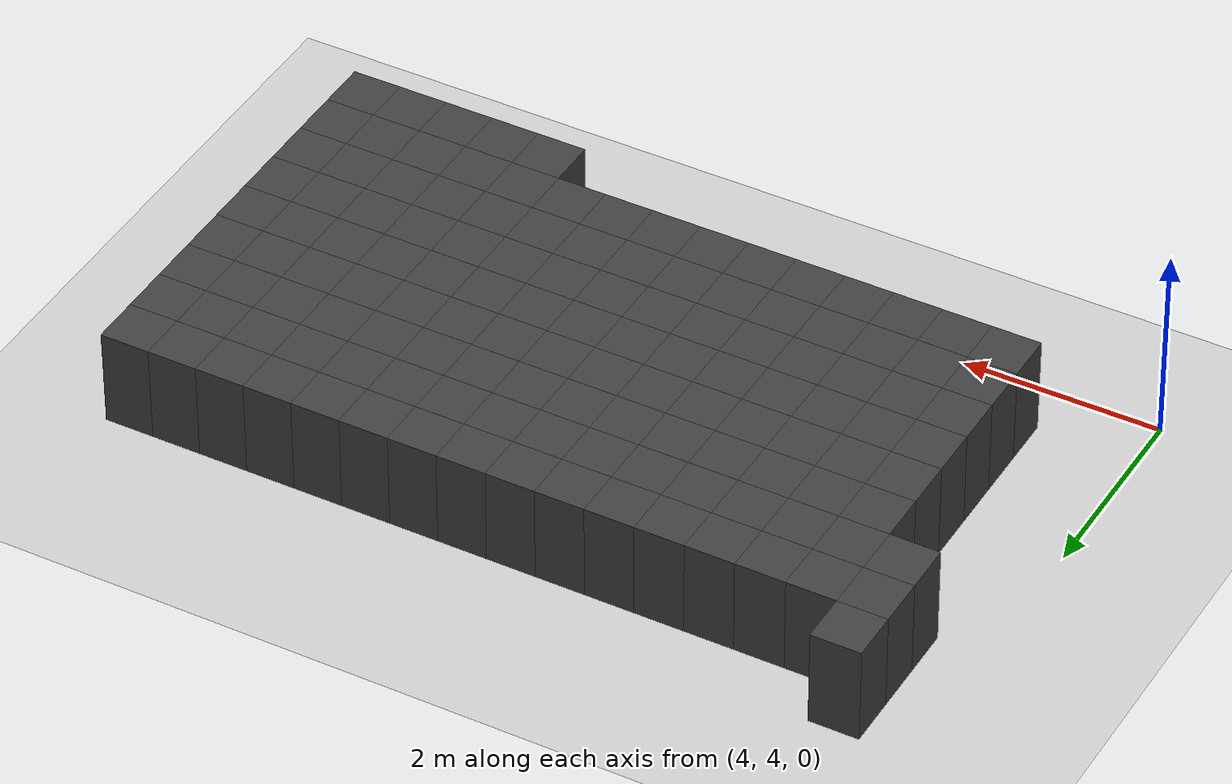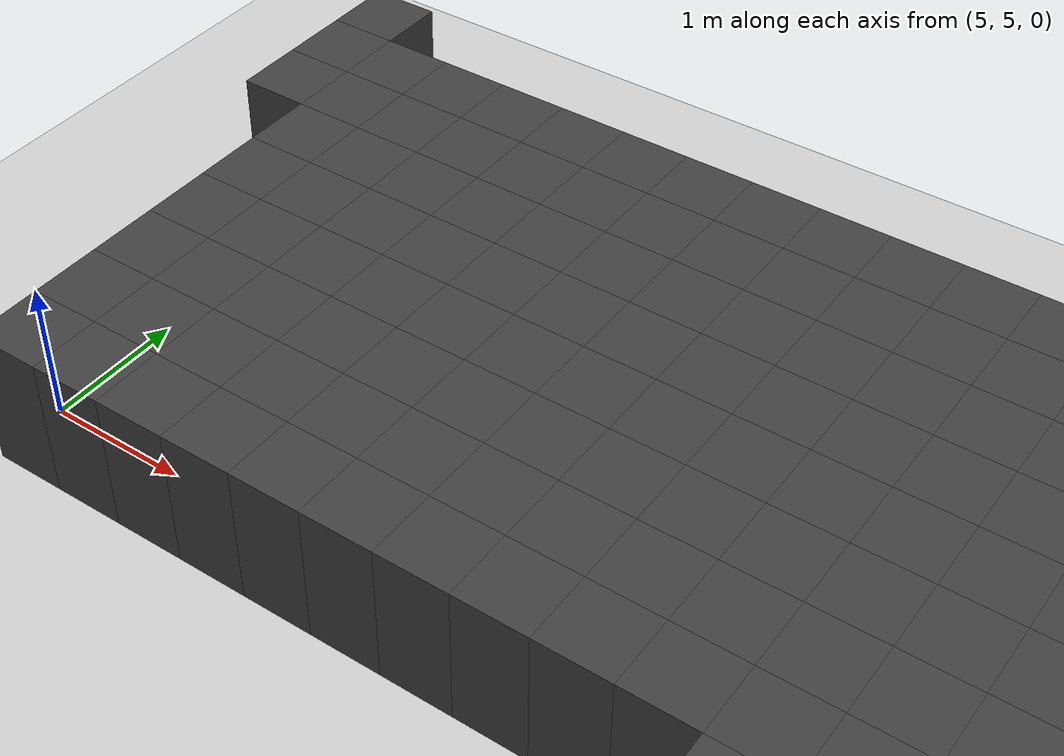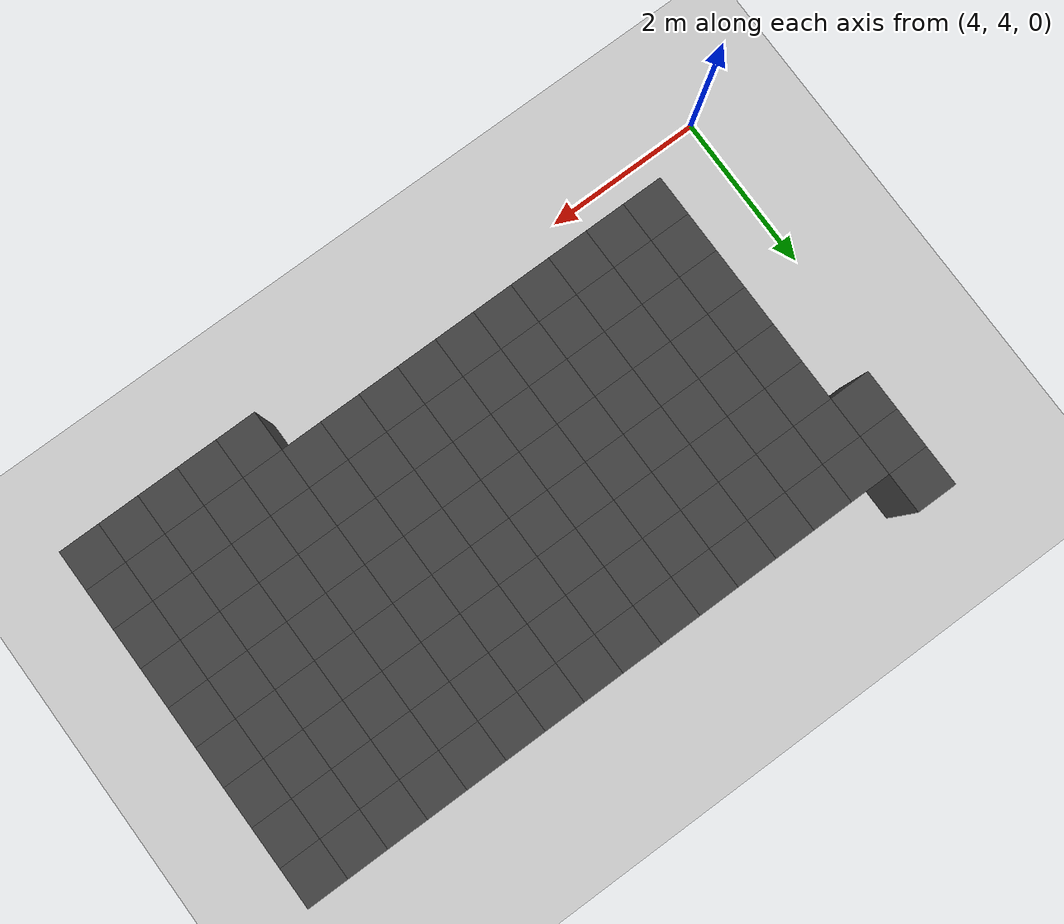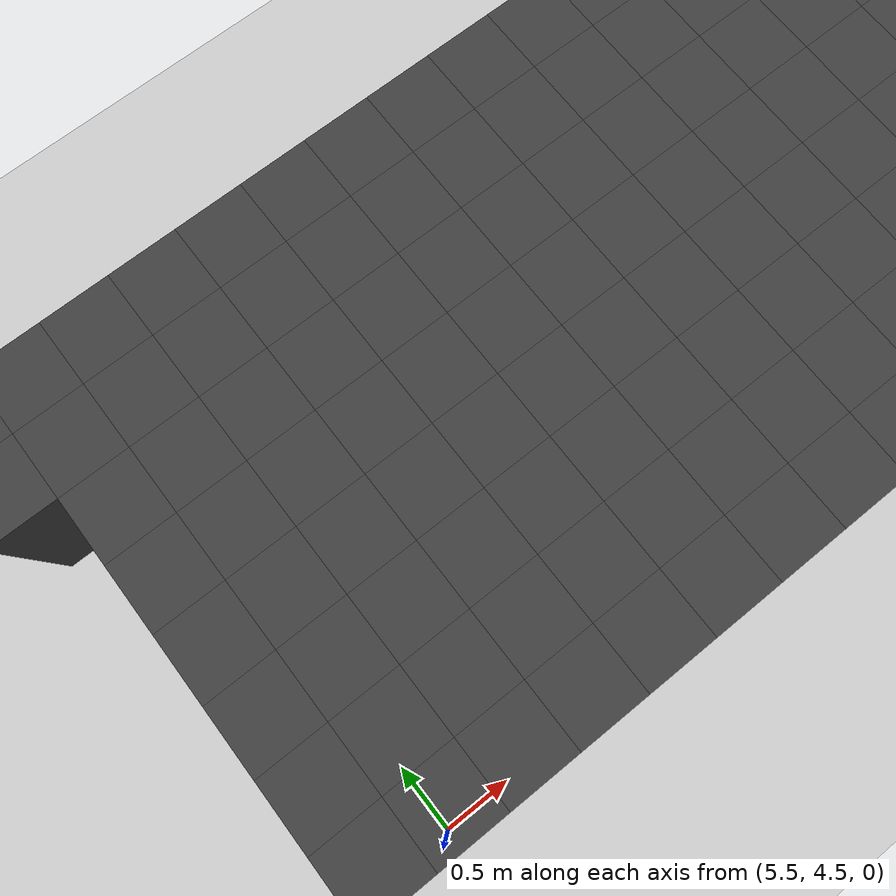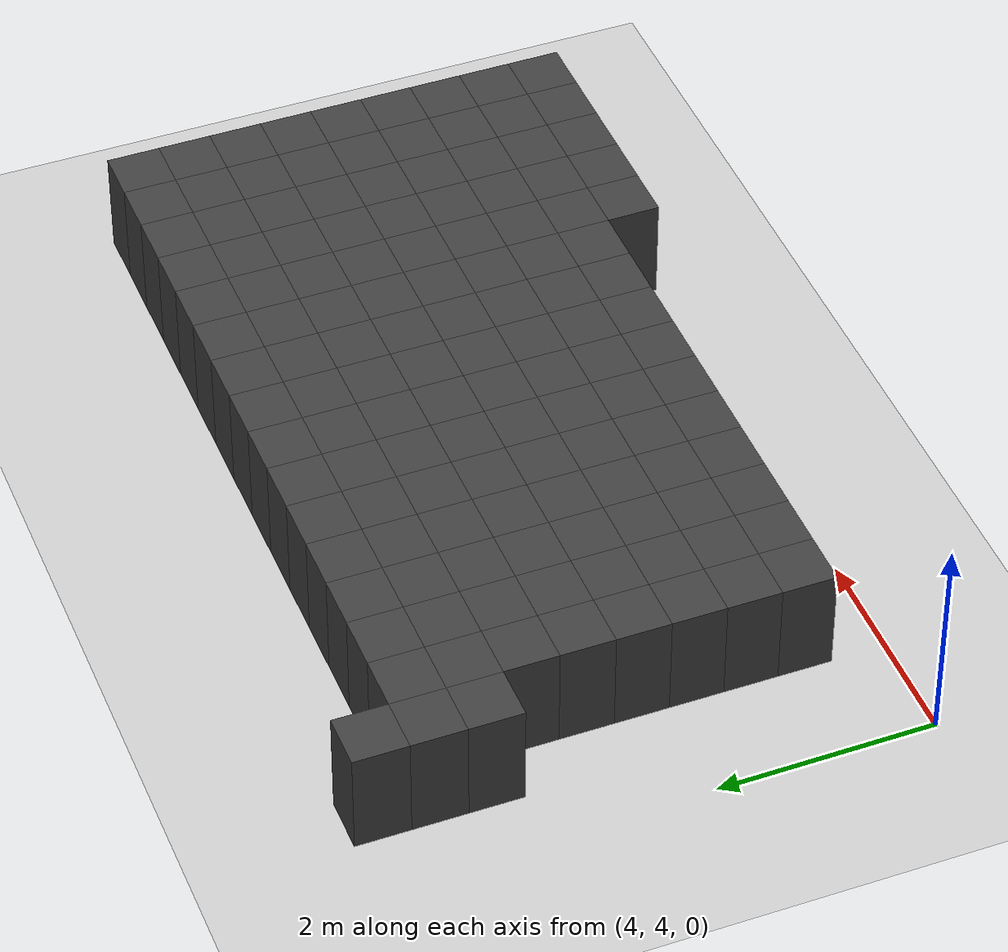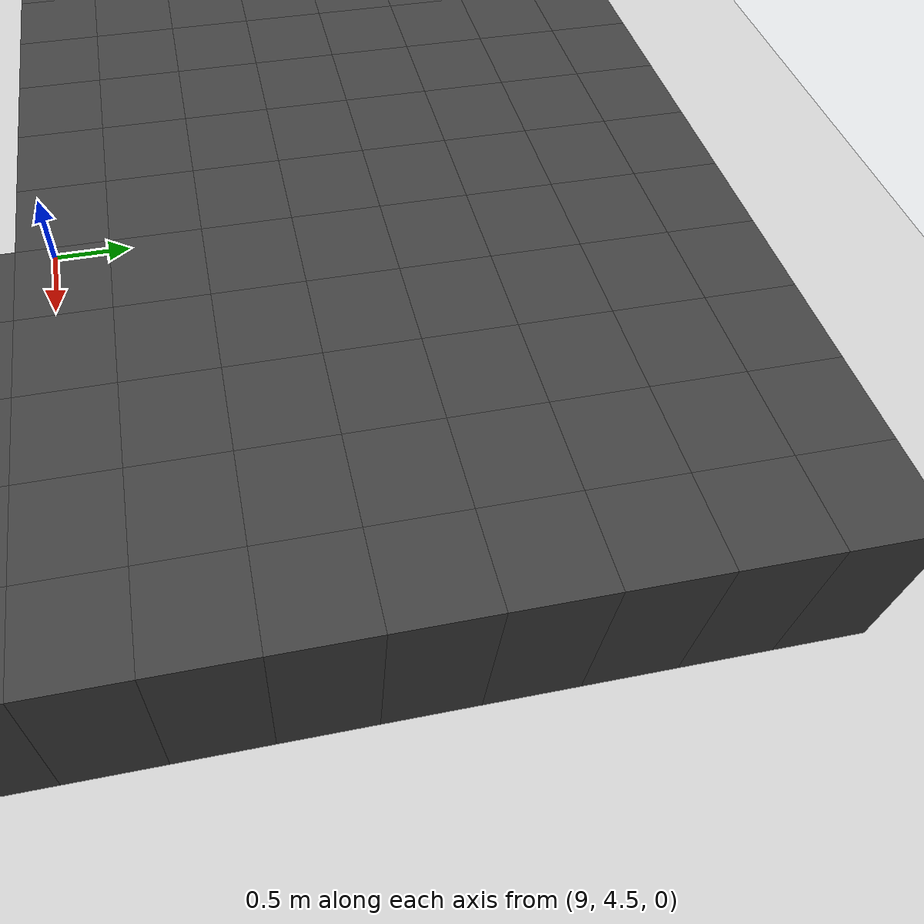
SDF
<sdf version="1.7">
 <world name="map_11672">
  <model name="ground_plane">
   <static>true</static>
   <link name="link">
    <collision name="collision">
     <geometry><plane><normal>0 0 1</normal><size>200 200</size></plane></geometry>
    </collision>
    <visual name="visual">
     <geometry><plane><normal>0 0 1</normal><size>200 200</size></plane></geometry>
     <material><ambient>0.8 0.8 0.8 1</ambient><diffuse>0.8 0.8 0.8 1</diffuse></material>
    </visual>
   </link>
  </model>
  <model name="maze_environment">
   <static>true</static>
   <link name="wall_364">
    <pose>4.750 8.750 0.500 0 0 0</pose>
    <collision name="col"><geometry><box><size>0.5 0.5 1.0</size></box></geometry></collision>
    <visual name="vis">
     <geometry><box><size>0.5 0.5 1.0</size></box></geometry>
     <material><ambient>0.15 0.15 0.15 1</ambient><diffuse>0.25 0.25 0.25 1</diffuse></material>
    </visual>
   </link>
   <link name="wall_401">
    <pose>4.750 8.250 0.500 0 0 0</pose>
    <collision name="col"><geometry><box><size>0.5 0.5 1.0</size></box></geometry></collision>
    <visual name="vis">
     <geometry><box><size>0.5 0.5 1.0</size></box></geometry>
     <material><ambient>0.15 0.15 0.15 1</ambient><diffuse>0.25 0.25 0.25 1</diffuse></material>
    </visual>
   </link>
   <link name="wall_402">
    <pose>5.250 8.250 0.500 0 0 0</pose>
    <collision name="col"><geometry><box><size>0.5 0.5 1.0</size></box></geometry></collision>
    <visual name="vis">
     <geometry><box><size>0.5 0.5 1.0</size></box></geometry>
     <material><ambient>0.15 0.15 0.15 1</ambient><diffuse>0.25 0.25 0.25 1</diffuse></material>
    </visual>
   </link>
   <link name="wall_403">
    <pose>5.750 8.250 0.500 0 0 0</pose>
    <collision name="col"><geometry><box><size>0.5 0.5 1.0</size></box></geometry></collision>
    <visual name="vis">
     <geometry><box><size>0.5 0.5 1.0</size></box></geometry>
     <material><ambient>0.15 0.15 0.15 1</ambient><diffuse>0.25 0.25 0.25 1</diffuse></material>
    </visual>
   </link>
   <link name="wall_404">
    <pose>6.250 8.250 0.500 0 0 0</pose>
    <collision name="col"><geometry><box><size>0.5 0.5 1.0</size></box></geometry></collision>
    <visual name="vis">
     <geometry><box><size>0.5 0.5 1.0</size></box></geometry>
     <material><ambient>0.15 0.15 0.15 1</ambient><diffuse>0.25 0.25 0.25 1</diffuse></material>
    </visual>
   </link>
   <link name="wall_405">
    <pose>6.750 8.250 0.500 0 0 0</pose>
    <collision name="col"><geometry><box><size>0.5 0.5 1.0</size></box></geometry></collision>
    <visual name="vis">
     <geometry><box><size>0.5 0.5 1.0</size></box></geometry>
     <material><ambient>0.15 0.15 0.15 1</ambient><diffuse>0.25 0.25 0.25 1</diffuse></material>
    </visual>
   </link>
   <link name="wall_406">
    <pose>7.250 8.250 0.500 0 0 0</pose>
    <collision name="col"><geometry><box><size>0.5 0.5 1.0</size></box></geometry></collision>
    <visual name="vis">
     <geometry><box><size>0.5 0.5 1.0</size></box></geometry>
     <material><ambient>0.15 0.15 0.15 1</ambient><diffuse>0.25 0.25 0.25 1</diffuse></material>
    </visual>
   </link>
   <link name="wall_407">
    <pose>7.750 8.250 0.500 0 0 0</pose>
    <collision name="col"><geometry><box><size>0.5 0.5 1.0</size></box></geometry></collision>
    <visual name="vis">
     <geometry><box><size>0.5 0.5 1.0</size></box></geometry>
     <material><ambient>0.15 0.15 0.15 1</ambient><diffuse>0.25 0.25 0.25 1</diffuse></material>
    </visual>
   </link>
   <link name="wall_408">
    <pose>8.250 8.250 0.500 0 0 0</pose>
    <collision name="col"><geometry><box><size>0.5 0.5 1.0</size></box></geometry></collision>
    <visual name="vis">
     <geometry><box><size>0.5 0.5 1.0</size></box></geometry>
     <material><ambient>0.15 0.15 0.15 1</ambient><diffuse>0.25 0.25 0.25 1</diffuse></material>
    </visual>
   </link>
   <link name="wall_409">
    <pose>8.750 8.250 0.500 0 0 0</pose>
    <collision name="col"><geometry><box><size>0.5 0.5 1.0</size></box></geometry></collision>
    <visual name="vis">
     <geometry><box><size>0.5 0.5 1.0</size></box></geometry>
     <material><ambient>0.15 0.15 0.15 1</ambient><diffuse>0.25 0.25 0.25 1</diffuse></material>
    </visual>
   </link>
   <link name="wall_410">
    <pose>9.250 8.250 0.500 0 0 0</pose>
    <collision name="col"><geometry><box><size>0.5 0.5 1.0</size></box></geometry></collision>
    <visual name="vis">
     <geometry><box><size>0.5 0.5 1.0</size></box></geometry>
     <material><ambient>0.15 0.15 0.15 1</ambient><diffuse>0.25 0.25 0.25 1</diffuse></material>
    </visual>
   </link>
   <link name="wall_411">
    <pose>9.750 8.250 0.500 0 0 0</pose>
    <collision name="col"><geometry><box><size>0.5 0.5 1.0</size></box></geometry></collision>
    <visual name="vis">
     <geometry><box><size>0.5 0.5 1.0</size></box></geometry>
     <material><ambient>0.15 0.15 0.15 1</ambient><diffuse>0.25 0.25 0.25 1</diffuse></material>
    </visual>
   </link>
   <link name="wall_412">
    <pose>10.250 8.250 0.500 0 0 0</pose>
    <collision name="col"><geometry><box><size>0.5 0.5 1.0</size></box></geometry></collision>
    <visual name="vis">
     <geometry><box><size>0.5 0.5 1.0</size></box></geometry>
     <material><ambient>0.15 0.15 0.15 1</ambient><diffuse>0.25 0.25 0.25 1</diffuse></material>
    </visual>
   </link>
   <link name="wall_413">
    <pose>10.750 8.250 0.500 0 0 0</pose>
    <collision name="col"><geometry><box><size>0.5 0.5 1.0</size></box></geometry></collision>
    <visual name="vis">
     <geometry><box><size>0.5 0.5 1.0</size></box></geometry>
     <material><ambient>0.15 0.15 0.15 1</ambient><diffuse>0.25 0.25 0.25 1</diffuse></material>
    </visual>
   </link>
   <link name="wall_414">
    <pose>11.250 8.250 0.500 0 0 0</pose>
    <collision name="col"><geometry><box><size>0.5 0.5 1.0</size></box></geometry></collision>
    <visual name="vis">
     <geometry><box><size>0.5 0.5 1.0</size></box></geometry>
     <material><ambient>0.15 0.15 0.15 1</ambient><diffuse>0.25 0.25 0.25 1</diffuse></material>
    </visual>
   </link>
   <link name="wall_415">
    <pose>11.750 8.250 0.500 0 0 0</pose>
    <collision name="col"><geometry><box><size>0.5 0.5 1.0</size></box></geometry></collision>
    <visual name="vis">
     <geometry><box><size>0.5 0.5 1.0</size></box></geometry>
     <material><ambient>0.15 0.15 0.15 1</ambient><diffuse>0.25 0.25 0.25 1</diffuse></material>
    </visual>
   </link>
   <link name="wall_416">
    <pose>12.250 8.250 0.500 0 0 0</pose>
    <collision name="col"><geometry><box><size>0.5 0.5 1.0</size></box></geometry></collision>
    <visual name="vis">
     <geometry><box><size>0.5 0.5 1.0</size></box></geometry>
     <material><ambient>0.15 0.15 0.15 1</ambient><diffuse>0.25 0.25 0.25 1</diffuse></material>
    </visual>
   </link>
   <link name="wall_431">
    <pose>4.750 7.750 0.500 0 0 0</pose>
    <collision name="col"><geometry><box><size>0.5 0.5 1.0</size></box></geometry></collision>
    <visual name="vis">
     <geometry><box><size>0.5 0.5 1.0</size></box></geometry>
     <material><ambient>0.15 0.15 0.15 1</ambient><diffuse>0.25 0.25 0.25 1</diffuse></material>
    </visual>
   </link>
   <link name="wall_432">
    <pose>5.250 7.750 0.500 0 0 0</pose>
    <collision name="col"><geometry><box><size>0.5 0.5 1.0</size></box></geometry></collision>
    <visual name="vis">
     <geometry><box><size>0.5 0.5 1.0</size></box></geometry>
     <material><ambient>0.15 0.15 0.15 1</ambient><diffuse>0.25 0.25 0.25 1</diffuse></material>
    </visual>
   </link>
   <link name="wall_433">
    <pose>5.750 7.750 0.500 0 0 0</pose>
    <collision name="col"><geometry><box><size>0.5 0.5 1.0</size></box></geometry></collision>
    <visual name="vis">
     <geometry><box><size>0.5 0.5 1.0</size></box></geometry>
     <material><ambient>0.15 0.15 0.15 1</ambient><diffuse>0.25 0.25 0.25 1</diffuse></material>
    </visual>
   </link>
   <link name="wall_434">
    <pose>6.250 7.750 0.500 0 0 0</pose>
    <collision name="col"><geometry><box><size>0.5 0.5 1.0</size></box></geometry></collision>
    <visual name="vis">
     <geometry><box><size>0.5 0.5 1.0</size></box></geometry>
     <material><ambient>0.15 0.15 0.15 1</ambient><diffuse>0.25 0.25 0.25 1</diffuse></material>
    </visual>
   </link>
   <link name="wall_435">
    <pose>6.750 7.750 0.500 0 0 0</pose>
    <collision name="col"><geometry><box><size>0.5 0.5 1.0</size></box></geometry></collision>
    <visual name="vis">
     <geometry><box><size>0.5 0.5 1.0</size></box></geometry>
     <material><ambient>0.15 0.15 0.15 1</ambient><diffuse>0.25 0.25 0.25 1</diffuse></material>
    </visual>
   </link>
   <link name="wall_436">
    <pose>7.250 7.750 0.500 0 0 0</pose>
    <collision name="col"><geometry><box><size>0.5 0.5 1.0</size></box></geometry></collision>
    <visual name="vis">
     <geometry><box><size>0.5 0.5 1.0</size></box></geometry>
     <material><ambient>0.15 0.15 0.15 1</ambient><diffuse>0.25 0.25 0.25 1</diffuse></material>
    </visual>
   </link>
   <link name="wall_437">
    <pose>7.750 7.750 0.500 0 0 0</pose>
    <collision name="col"><geometry><box><size>0.5 0.5 1.0</size></box></geometry></collision>
    <visual name="vis">
     <geometry><box><size>0.5 0.5 1.0</size></box></geometry>
     <material><ambient>0.15 0.15 0.15 1</ambient><diffuse>0.25 0.25 0.25 1</diffuse></material>
    </visual>
   </link>
   <link name="wall_438">
    <pose>8.250 7.750 0.500 0 0 0</pose>
    <collision name="col"><geometry><box><size>0.5 0.5 1.0</size></box></geometry></collision>
    <visual name="vis">
     <geometry><box><size>0.5 0.5 1.0</size></box></geometry>
     <material><ambient>0.15 0.15 0.15 1</ambient><diffuse>0.25 0.25 0.25 1</diffuse></material>
    </visual>
   </link>
   <link name="wall_439">
    <pose>8.750 7.750 0.500 0 0 0</pose>
    <collision name="col"><geometry><box><size>0.5 0.5 1.0</size></box></geometry></collision>
    <visual name="vis">
     <geometry><box><size>0.5 0.5 1.0</size></box></geometry>
     <material><ambient>0.15 0.15 0.15 1</ambient><diffuse>0.25 0.25 0.25 1</diffuse></material>
    </visual>
   </link>
   <link name="wall_440">
    <pose>9.250 7.750 0.500 0 0 0</pose>
    <collision name="col"><geometry><box><size>0.5 0.5 1.0</size></box></geometry></collision>
    <visual name="vis">
     <geometry><box><size>0.5 0.5 1.0</size></box></geometry>
     <material><ambient>0.15 0.15 0.15 1</ambient><diffuse>0.25 0.25 0.25 1</diffuse></material>
    </visual>
   </link>
   <link name="wall_441">
    <pose>9.750 7.750 0.500 0 0 0</pose>
    <collision name="col"><geometry><box><size>0.5 0.5 1.0</size></box></geometry></collision>
    <visual name="vis">
     <geometry><box><size>0.5 0.5 1.0</size></box></geometry>
     <material><ambient>0.15 0.15 0.15 1</ambient><diffuse>0.25 0.25 0.25 1</diffuse></material>
    </visual>
   </link>
   <link name="wall_442">
    <pose>10.250 7.750 0.500 0 0 0</pose>
    <collision name="col"><geometry><box><size>0.5 0.5 1.0</size></box></geometry></collision>
    <visual name="vis">
     <geometry><box><size>0.5 0.5 1.0</size></box></geometry>
     <material><ambient>0.15 0.15 0.15 1</ambient><diffuse>0.25 0.25 0.25 1</diffuse></material>
    </visual>
   </link>
   <link name="wall_443">
    <pose>10.750 7.750 0.500 0 0 0</pose>
    <collision name="col"><geometry><box><size>0.5 0.5 1.0</size></box></geometry></collision>
    <visual name="vis">
     <geometry><box><size>0.5 0.5 1.0</size></box></geometry>
     <material><ambient>0.15 0.15 0.15 1</ambient><diffuse>0.25 0.25 0.25 1</diffuse></material>
    </visual>
   </link>
   <link name="wall_444">
    <pose>11.250 7.750 0.500 0 0 0</pose>
    <collision name="col"><geometry><box><size>0.5 0.5 1.0</size></box></geometry></collision>
    <visual name="vis">
     <geometry><box><size>0.5 0.5 1.0</size></box></geometry>
     <material><ambient>0.15 0.15 0.15 1</ambient><diffuse>0.25 0.25 0.25 1</diffuse></material>
    </visual>
   </link>
   <link name="wall_445">
    <pose>11.750 7.750 0.500 0 0 0</pose>
    <collision name="col"><geometry><box><size>0.5 0.5 1.0</size></box></geometry></collision>
    <visual name="vis">
     <geometry><box><size>0.5 0.5 1.0</size></box></geometry>
     <material><ambient>0.15 0.15 0.15 1</ambient><diffuse>0.25 0.25 0.25 1</diffuse></material>
    </visual>
   </link>
   <link name="wall_446">
    <pose>12.250 7.750 0.500 0 0 0</pose>
    <collision name="col"><geometry><box><size>0.5 0.5 1.0</size></box></geometry></collision>
    <visual name="vis">
     <geometry><box><size>0.5 0.5 1.0</size></box></geometry>
     <material><ambient>0.15 0.15 0.15 1</ambient><diffuse>0.25 0.25 0.25 1</diffuse></material>
    </visual>
   </link>
   <link name="wall_461">
    <pose>5.250 7.250 0.500 0 0 0</pose>
    <collision name="col"><geometry><box><size>0.5 0.5 1.0</size></box></geometry></collision>
    <visual name="vis">
     <geometry><box><size>0.5 0.5 1.0</size></box></geometry>
     <material><ambient>0.15 0.15 0.15 1</ambient><diffuse>0.25 0.25 0.25 1</diffuse></material>
    </visual>
   </link>
   <link name="wall_462">
    <pose>5.750 7.250 0.500 0 0 0</pose>
    <collision name="col"><geometry><box><size>0.5 0.5 1.0</size></box></geometry></collision>
    <visual name="vis">
     <geometry><box><size>0.5 0.5 1.0</size></box></geometry>
     <material><ambient>0.15 0.15 0.15 1</ambient><diffuse>0.25 0.25 0.25 1</diffuse></material>
    </visual>
   </link>
   <link name="wall_463">
    <pose>6.250 7.250 0.500 0 0 0</pose>
    <collision name="col"><geometry><box><size>0.5 0.5 1.0</size></box></geometry></collision>
    <visual name="vis">
     <geometry><box><size>0.5 0.5 1.0</size></box></geometry>
     <material><ambient>0.15 0.15 0.15 1</ambient><diffuse>0.25 0.25 0.25 1</diffuse></material>
    </visual>
   </link>
   <link name="wall_464">
    <pose>6.750 7.250 0.500 0 0 0</pose>
    <collision name="col"><geometry><box><size>0.5 0.5 1.0</size></box></geometry></collision>
    <visual name="vis">
     <geometry><box><size>0.5 0.5 1.0</size></box></geometry>
     <material><ambient>0.15 0.15 0.15 1</ambient><diffuse>0.25 0.25 0.25 1</diffuse></material>
    </visual>
   </link>
   <link name="wall_465">
    <pose>7.250 7.250 0.500 0 0 0</pose>
    <collision name="col"><geometry><box><size>0.5 0.5 1.0</size></box></geometry></collision>
    <visual name="vis">
     <geometry><box><size>0.5 0.5 1.0</size></box></geometry>
     <material><ambient>0.15 0.15 0.15 1</ambient><diffuse>0.25 0.25 0.25 1</diffuse></material>
    </visual>
   </link>
   <link name="wall_466">
    <pose>7.750 7.250 0.500 0 0 0</pose>
    <collision name="col"><geometry><box><size>0.5 0.5 1.0</size></box></geometry></collision>
    <visual name="vis">
     <geometry><box><size>0.5 0.5 1.0</size></box></geometry>
     <material><ambient>0.15 0.15 0.15 1</ambient><diffuse>0.25 0.25 0.25 1</diffuse></material>
    </visual>
   </link>
   <link name="wall_467">
    <pose>8.250 7.250 0.500 0 0 0</pose>
    <collision name="col"><geometry><box><size>0.5 0.5 1.0</size></box></geometry></collision>
    <visual name="vis">
     <geometry><box><size>0.5 0.5 1.0</size></box></geometry>
     <material><ambient>0.15 0.15 0.15 1</ambient><diffuse>0.25 0.25 0.25 1</diffuse></material>
    </visual>
   </link>
   <link name="wall_468">
    <pose>8.750 7.250 0.500 0 0 0</pose>
    <collision name="col"><geometry><box><size>0.5 0.5 1.0</size></box></geometry></collision>
    <visual name="vis">
     <geometry><box><size>0.5 0.5 1.0</size></box></geometry>
     <material><ambient>0.15 0.15 0.15 1</ambient><diffuse>0.25 0.25 0.25 1</diffuse></material>
    </visual>
   </link>
   <link name="wall_469">
    <pose>9.250 7.250 0.500 0 0 0</pose>
    <collision name="col"><geometry><box><size>0.5 0.5 1.0</size></box></geometry></collision>
    <visual name="vis">
     <geometry><box><size>0.5 0.5 1.0</size></box></geometry>
     <material><ambient>0.15 0.15 0.15 1</ambient><diffuse>0.25 0.25 0.25 1</diffuse></material>
    </visual>
   </link>
   <link name="wall_470">
    <pose>9.750 7.250 0.500 0 0 0</pose>
    <collision name="col"><geometry><box><size>0.5 0.5 1.0</size></box></geometry></collision>
    <visual name="vis">
     <geometry><box><size>0.5 0.5 1.0</size></box></geometry>
     <material><ambient>0.15 0.15 0.15 1</ambient><diffuse>0.25 0.25 0.25 1</diffuse></material>
    </visual>
   </link>
   <link name="wall_471">
    <pose>10.250 7.250 0.500 0 0 0</pose>
    <collision name="col"><geometry><box><size>0.5 0.5 1.0</size></box></geometry></collision>
    <visual name="vis">
     <geometry><box><size>0.5 0.5 1.0</size></box></geometry>
     <material><ambient>0.15 0.15 0.15 1</ambient><diffuse>0.25 0.25 0.25 1</diffuse></material>
    </visual>
   </link>
   <link name="wall_472">
    <pose>10.750 7.250 0.500 0 0 0</pose>
    <collision name="col"><geometry><box><size>0.5 0.5 1.0</size></box></geometry></collision>
    <visual name="vis">
     <geometry><box><size>0.5 0.5 1.0</size></box></geometry>
     <material><ambient>0.15 0.15 0.15 1</ambient><diffuse>0.25 0.25 0.25 1</diffuse></material>
    </visual>
   </link>
   <link name="wall_473">
    <pose>11.250 7.250 0.500 0 0 0</pose>
    <collision name="col"><geometry><box><size>0.5 0.5 1.0</size></box></geometry></collision>
    <visual name="vis">
     <geometry><box><size>0.5 0.5 1.0</size></box></geometry>
     <material><ambient>0.15 0.15 0.15 1</ambient><diffuse>0.25 0.25 0.25 1</diffuse></material>
    </visual>
   </link>
   <link name="wall_474">
    <pose>11.750 7.250 0.500 0 0 0</pose>
    <collision name="col"><geometry><box><size>0.5 0.5 1.0</size></box></geometry></collision>
    <visual name="vis">
     <geometry><box><size>0.5 0.5 1.0</size></box></geometry>
     <material><ambient>0.15 0.15 0.15 1</ambient><diffuse>0.25 0.25 0.25 1</diffuse></material>
    </visual>
   </link>
   <link name="wall_475">
    <pose>12.250 7.250 0.500 0 0 0</pose>
    <collision name="col"><geometry><box><size>0.5 0.5 1.0</size></box></geometry></collision>
    <visual name="vis">
     <geometry><box><size>0.5 0.5 1.0</size></box></geometry>
     <material><ambient>0.15 0.15 0.15 1</ambient><diffuse>0.25 0.25 0.25 1</diffuse></material>
    </visual>
   </link>
   <link name="wall_483">
    <pose>5.250 6.750 0.500 0 0 0</pose>
    <collision name="col"><geometry><box><size>0.5 0.5 1.0</size></box></geometry></collision>
    <visual name="vis">
     <geometry><box><size>0.5 0.5 1.0</size></box></geometry>
     <material><ambient>0.15 0.15 0.15 1</ambient><diffuse>0.25 0.25 0.25 1</diffuse></material>
    </visual>
   </link>
   <link name="wall_484">
    <pose>5.750 6.750 0.500 0 0 0</pose>
    <collision name="col"><geometry><box><size>0.5 0.5 1.0</size></box></geometry></collision>
    <visual name="vis">
     <geometry><box><size>0.5 0.5 1.0</size></box></geometry>
     <material><ambient>0.15 0.15 0.15 1</ambient><diffuse>0.25 0.25 0.25 1</diffuse></material>
    </visual>
   </link>
   <link name="wall_485">
    <pose>6.250 6.750 0.500 0 0 0</pose>
    <collision name="col"><geometry><box><size>0.5 0.5 1.0</size></box></geometry></collision>
    <visual name="vis">
     <geometry><box><size>0.5 0.5 1.0</size></box></geometry>
     <material><ambient>0.15 0.15 0.15 1</ambient><diffuse>0.25 0.25 0.25 1</diffuse></material>
    </visual>
   </link>
   <link name="wall_486">
    <pose>6.750 6.750 0.500 0 0 0</pose>
    <collision name="col"><geometry><box><size>0.5 0.5 1.0</size></box></geometry></collision>
    <visual name="vis">
     <geometry><box><size>0.5 0.5 1.0</size></box></geometry>
     <material><ambient>0.15 0.15 0.15 1</ambient><diffuse>0.25 0.25 0.25 1</diffuse></material>
    </visual>
   </link>
   <link name="wall_487">
    <pose>7.250 6.750 0.500 0 0 0</pose>
    <collision name="col"><geometry><box><size>0.5 0.5 1.0</size></box></geometry></collision>
    <visual name="vis">
     <geometry><box><size>0.5 0.5 1.0</size></box></geometry>
     <material><ambient>0.15 0.15 0.15 1</ambient><diffuse>0.25 0.25 0.25 1</diffuse></material>
    </visual>
   </link>
   <link name="wall_488">
    <pose>7.750 6.750 0.500 0 0 0</pose>
    <collision name="col"><geometry><box><size>0.5 0.5 1.0</size></box></geometry></collision>
    <visual name="vis">
     <geometry><box><size>0.5 0.5 1.0</size></box></geometry>
     <material><ambient>0.15 0.15 0.15 1</ambient><diffuse>0.25 0.25 0.25 1</diffuse></material>
    </visual>
   </link>
   <link name="wall_489">
    <pose>8.250 6.750 0.500 0 0 0</pose>
    <collision name="col"><geometry><box><size>0.5 0.5 1.0</size></box></geometry></collision>
    <visual name="vis">
     <geometry><box><size>0.5 0.5 1.0</size></box></geometry>
     <material><ambient>0.15 0.15 0.15 1</ambient><diffuse>0.25 0.25 0.25 1</diffuse></material>
    </visual>
   </link>
   <link name="wall_490">
    <pose>8.750 6.750 0.500 0 0 0</pose>
    <collision name="col"><geometry><box><size>0.5 0.5 1.0</size></box></geometry></collision>
    <visual name="vis">
     <geometry><box><size>0.5 0.5 1.0</size></box></geometry>
     <material><ambient>0.15 0.15 0.15 1</ambient><diffuse>0.25 0.25 0.25 1</diffuse></material>
    </visual>
   </link>
   <link name="wall_491">
    <pose>9.250 6.750 0.500 0 0 0</pose>
    <collision name="col"><geometry><box><size>0.5 0.5 1.0</size></box></geometry></collision>
    <visual name="vis">
     <geometry><box><size>0.5 0.5 1.0</size></box></geometry>
     <material><ambient>0.15 0.15 0.15 1</ambient><diffuse>0.25 0.25 0.25 1</diffuse></material>
    </visual>
   </link>
   <link name="wall_492">
    <pose>9.750 6.750 0.500 0 0 0</pose>
    <collision name="col"><geometry><box><size>0.5 0.5 1.0</size></box></geometry></collision>
    <visual name="vis">
     <geometry><box><size>0.5 0.5 1.0</size></box></geometry>
     <material><ambient>0.15 0.15 0.15 1</ambient><diffuse>0.25 0.25 0.25 1</diffuse></material>
    </visual>
   </link>
   <link name="wall_493">
    <pose>10.250 6.750 0.500 0 0 0</pose>
    <collision name="col"><geometry><box><size>0.5 0.5 1.0</size></box></geometry></collision>
    <visual name="vis">
     <geometry><box><size>0.5 0.5 1.0</size></box></geometry>
     <material><ambient>0.15 0.15 0.15 1</ambient><diffuse>0.25 0.25 0.25 1</diffuse></material>
    </visual>
   </link>
   <link name="wall_494">
    <pose>10.750 6.750 0.500 0 0 0</pose>
    <collision name="col"><geometry><box><size>0.5 0.5 1.0</size></box></geometry></collision>
    <visual name="vis">
     <geometry><box><size>0.5 0.5 1.0</size></box></geometry>
     <material><ambient>0.15 0.15 0.15 1</ambient><diffuse>0.25 0.25 0.25 1</diffuse></material>
    </visual>
   </link>
   <link name="wall_495">
    <pose>11.250 6.750 0.500 0 0 0</pose>
    <collision name="col"><geometry><box><size>0.5 0.5 1.0</size></box></geometry></collision>
    <visual name="vis">
     <geometry><box><size>0.5 0.5 1.0</size></box></geometry>
     <material><ambient>0.15 0.15 0.15 1</ambient><diffuse>0.25 0.25 0.25 1</diffuse></material>
    </visual>
   </link>
   <link name="wall_496">
    <pose>11.750 6.750 0.500 0 0 0</pose>
    <collision name="col"><geometry><box><size>0.5 0.5 1.0</size></box></geometry></collision>
    <visual name="vis">
     <geometry><box><size>0.5 0.5 1.0</size></box></geometry>
     <material><ambient>0.15 0.15 0.15 1</ambient><diffuse>0.25 0.25 0.25 1</diffuse></material>
    </visual>
   </link>
   <link name="wall_497">
    <pose>12.250 6.750 0.500 0 0 0</pose>
    <collision name="col"><geometry><box><size>0.5 0.5 1.0</size></box></geometry></collision>
    <visual name="vis">
     <geometry><box><size>0.5 0.5 1.0</size></box></geometry>
     <material><ambient>0.15 0.15 0.15 1</ambient><diffuse>0.25 0.25 0.25 1</diffuse></material>
    </visual>
   </link>
   <link name="wall_509">
    <pose>5.250 6.250 0.500 0 0 0</pose>
    <collision name="col"><geometry><box><size>0.5 0.5 1.0</size></box></geometry></collision>
    <visual name="vis">
     <geometry><box><size>0.5 0.5 1.0</size></box></geometry>
     <material><ambient>0.15 0.15 0.15 1</ambient><diffuse>0.25 0.25 0.25 1</diffuse></material>
    </visual>
   </link>
   <link name="wall_510">
    <pose>5.750 6.250 0.500 0 0 0</pose>
    <collision name="col"><geometry><box><size>0.5 0.5 1.0</size></box></geometry></collision>
    <visual name="vis">
     <geometry><box><size>0.5 0.5 1.0</size></box></geometry>
     <material><ambient>0.15 0.15 0.15 1</ambient><diffuse>0.25 0.25 0.25 1</diffuse></material>
    </visual>
   </link>
   <link name="wall_511">
    <pose>6.250 6.250 0.500 0 0 0</pose>
    <collision name="col"><geometry><box><size>0.5 0.5 1.0</size></box></geometry></collision>
    <visual name="vis">
     <geometry><box><size>0.5 0.5 1.0</size></box></geometry>
     <material><ambient>0.15 0.15 0.15 1</ambient><diffuse>0.25 0.25 0.25 1</diffuse></material>
    </visual>
   </link>
   <link name="wall_512">
    <pose>6.750 6.250 0.500 0 0 0</pose>
    <collision name="col"><geometry><box><size>0.5 0.5 1.0</size></box></geometry></collision>
    <visual name="vis">
     <geometry><box><size>0.5 0.5 1.0</size></box></geometry>
     <material><ambient>0.15 0.15 0.15 1</ambient><diffuse>0.25 0.25 0.25 1</diffuse></material>
    </visual>
   </link>
   <link name="wall_513">
    <pose>7.250 6.250 0.500 0 0 0</pose>
    <collision name="col"><geometry><box><size>0.5 0.5 1.0</size></box></geometry></collision>
    <visual name="vis">
     <geometry><box><size>0.5 0.5 1.0</size></box></geometry>
     <material><ambient>0.15 0.15 0.15 1</ambient><diffuse>0.25 0.25 0.25 1</diffuse></material>
    </visual>
   </link>
   <link name="wall_514">
    <pose>7.750 6.250 0.500 0 0 0</pose>
    <collision name="col"><geometry><box><size>0.5 0.5 1.0</size></box></geometry></collision>
    <visual name="vis">
     <geometry><box><size>0.5 0.5 1.0</size></box></geometry>
     <material><ambient>0.15 0.15 0.15 1</ambient><diffuse>0.25 0.25 0.25 1</diffuse></material>
    </visual>
   </link>
   <link name="wall_515">
    <pose>8.250 6.250 0.500 0 0 0</pose>
    <collision name="col"><geometry><box><size>0.5 0.5 1.0</size></box></geometry></collision>
    <visual name="vis">
     <geometry><box><size>0.5 0.5 1.0</size></box></geometry>
     <material><ambient>0.15 0.15 0.15 1</ambient><diffuse>0.25 0.25 0.25 1</diffuse></material>
    </visual>
   </link>
   <link name="wall_516">
    <pose>8.750 6.250 0.500 0 0 0</pose>
    <collision name="col"><geometry><box><size>0.5 0.5 1.0</size></box></geometry></collision>
    <visual name="vis">
     <geometry><box><size>0.5 0.5 1.0</size></box></geometry>
     <material><ambient>0.15 0.15 0.15 1</ambient><diffuse>0.25 0.25 0.25 1</diffuse></material>
    </visual>
   </link>
   <link name="wall_517">
    <pose>9.250 6.250 0.500 0 0 0</pose>
    <collision name="col"><geometry><box><size>0.5 0.5 1.0</size></box></geometry></collision>
    <visual name="vis">
     <geometry><box><size>0.5 0.5 1.0</size></box></geometry>
     <material><ambient>0.15 0.15 0.15 1</ambient><diffuse>0.25 0.25 0.25 1</diffuse></material>
    </visual>
   </link>
   <link name="wall_518">
    <pose>9.750 6.250 0.500 0 0 0</pose>
    <collision name="col"><geometry><box><size>0.5 0.5 1.0</size></box></geometry></collision>
    <visual name="vis">
     <geometry><box><size>0.5 0.5 1.0</size></box></geometry>
     <material><ambient>0.15 0.15 0.15 1</ambient><diffuse>0.25 0.25 0.25 1</diffuse></material>
    </visual>
   </link>
   <link name="wall_519">
    <pose>10.250 6.250 0.500 0 0 0</pose>
    <collision name="col"><geometry><box><size>0.5 0.5 1.0</size></box></geometry></collision>
    <visual name="vis">
     <geometry><box><size>0.5 0.5 1.0</size></box></geometry>
     <material><ambient>0.15 0.15 0.15 1</ambient><diffuse>0.25 0.25 0.25 1</diffuse></material>
    </visual>
   </link>
   <link name="wall_520">
    <pose>10.750 6.250 0.500 0 0 0</pose>
    <collision name="col"><geometry><box><size>0.5 0.5 1.0</size></box></geometry></collision>
    <visual name="vis">
     <geometry><box><size>0.5 0.5 1.0</size></box></geometry>
     <material><ambient>0.15 0.15 0.15 1</ambient><diffuse>0.25 0.25 0.25 1</diffuse></material>
    </visual>
   </link>
   <link name="wall_521">
    <pose>11.250 6.250 0.500 0 0 0</pose>
    <collision name="col"><geometry><box><size>0.5 0.5 1.0</size></box></geometry></collision>
    <visual name="vis">
     <geometry><box><size>0.5 0.5 1.0</size></box></geometry>
     <material><ambient>0.15 0.15 0.15 1</ambient><diffuse>0.25 0.25 0.25 1</diffuse></material>
    </visual>
   </link>
   <link name="wall_522">
    <pose>11.750 6.250 0.500 0 0 0</pose>
    <collision name="col"><geometry><box><size>0.5 0.5 1.0</size></box></geometry></collision>
    <visual name="vis">
     <geometry><box><size>0.5 0.5 1.0</size></box></geometry>
     <material><ambient>0.15 0.15 0.15 1</ambient><diffuse>0.25 0.25 0.25 1</diffuse></material>
    </visual>
   </link>
   <link name="wall_523">
    <pose>12.250 6.250 0.500 0 0 0</pose>
    <collision name="col"><geometry><box><size>0.5 0.5 1.0</size></box></geometry></collision>
    <visual name="vis">
     <geometry><box><size>0.5 0.5 1.0</size></box></geometry>
     <material><ambient>0.15 0.15 0.15 1</ambient><diffuse>0.25 0.25 0.25 1</diffuse></material>
    </visual>
   </link>
   <link name="wall_538">
    <pose>5.250 5.750 0.500 0 0 0</pose>
    <collision name="col"><geometry><box><size>0.5 0.5 1.0</size></box></geometry></collision>
    <visual name="vis">
     <geometry><box><size>0.5 0.5 1.0</size></box></geometry>
     <material><ambient>0.15 0.15 0.15 1</ambient><diffuse>0.25 0.25 0.25 1</diffuse></material>
    </visual>
   </link>
   <link name="wall_539">
    <pose>5.750 5.750 0.500 0 0 0</pose>
    <collision name="col"><geometry><box><size>0.5 0.5 1.0</size></box></geometry></collision>
    <visual name="vis">
     <geometry><box><size>0.5 0.5 1.0</size></box></geometry>
     <material><ambient>0.15 0.15 0.15 1</ambient><diffuse>0.25 0.25 0.25 1</diffuse></material>
    </visual>
   </link>
   <link name="wall_540">
    <pose>6.250 5.750 0.500 0 0 0</pose>
    <collision name="col"><geometry><box><size>0.5 0.5 1.0</size></box></geometry></collision>
    <visual name="vis">
     <geometry><box><size>0.5 0.5 1.0</size></box></geometry>
     <material><ambient>0.15 0.15 0.15 1</ambient><diffuse>0.25 0.25 0.25 1</diffuse></material>
    </visual>
   </link>
   <link name="wall_541">
    <pose>6.750 5.750 0.500 0 0 0</pose>
    <collision name="col"><geometry><box><size>0.5 0.5 1.0</size></box></geometry></collision>
    <visual name="vis">
     <geometry><box><size>0.5 0.5 1.0</size></box></geometry>
     <material><ambient>0.15 0.15 0.15 1</ambient><diffuse>0.25 0.25 0.25 1</diffuse></material>
    </visual>
   </link>
   <link name="wall_542">
    <pose>7.250 5.750 0.500 0 0 0</pose>
    <collision name="col"><geometry><box><size>0.5 0.5 1.0</size></box></geometry></collision>
    <visual name="vis">
     <geometry><box><size>0.5 0.5 1.0</size></box></geometry>
     <material><ambient>0.15 0.15 0.15 1</ambient><diffuse>0.25 0.25 0.25 1</diffuse></material>
    </visual>
   </link>
   <link name="wall_543">
    <pose>7.750 5.750 0.500 0 0 0</pose>
    <collision name="col"><geometry><box><size>0.5 0.5 1.0</size></box></geometry></collision>
    <visual name="vis">
     <geometry><box><size>0.5 0.5 1.0</size></box></geometry>
     <material><ambient>0.15 0.15 0.15 1</ambient><diffuse>0.25 0.25 0.25 1</diffuse></material>
    </visual>
   </link>
   <link name="wall_544">
    <pose>8.250 5.750 0.500 0 0 0</pose>
    <collision name="col"><geometry><box><size>0.5 0.5 1.0</size></box></geometry></collision>
    <visual name="vis">
     <geometry><box><size>0.5 0.5 1.0</size></box></geometry>
     <material><ambient>0.15 0.15 0.15 1</ambient><diffuse>0.25 0.25 0.25 1</diffuse></material>
    </visual>
   </link>
   <link name="wall_545">
    <pose>8.750 5.750 0.500 0 0 0</pose>
    <collision name="col"><geometry><box><size>0.5 0.5 1.0</size></box></geometry></collision>
    <visual name="vis">
     <geometry><box><size>0.5 0.5 1.0</size></box></geometry>
     <material><ambient>0.15 0.15 0.15 1</ambient><diffuse>0.25 0.25 0.25 1</diffuse></material>
    </visual>
   </link>
   <link name="wall_546">
    <pose>9.250 5.750 0.500 0 0 0</pose>
    <collision name="col"><geometry><box><size>0.5 0.5 1.0</size></box></geometry></collision>
    <visual name="vis">
     <geometry><box><size>0.5 0.5 1.0</size></box></geometry>
     <material><ambient>0.15 0.15 0.15 1</ambient><diffuse>0.25 0.25 0.25 1</diffuse></material>
    </visual>
   </link>
   <link name="wall_547">
    <pose>9.750 5.750 0.500 0 0 0</pose>
    <collision name="col"><geometry><box><size>0.5 0.5 1.0</size></box></geometry></collision>
    <visual name="vis">
     <geometry><box><size>0.5 0.5 1.0</size></box></geometry>
     <material><ambient>0.15 0.15 0.15 1</ambient><diffuse>0.25 0.25 0.25 1</diffuse></material>
    </visual>
   </link>
   <link name="wall_548">
    <pose>10.250 5.750 0.500 0 0 0</pose>
    <collision name="col"><geometry><box><size>0.5 0.5 1.0</size></box></geometry></collision>
    <visual name="vis">
     <geometry><box><size>0.5 0.5 1.0</size></box></geometry>
     <material><ambient>0.15 0.15 0.15 1</ambient><diffuse>0.25 0.25 0.25 1</diffuse></material>
    </visual>
   </link>
   <link name="wall_549">
    <pose>10.750 5.750 0.500 0 0 0</pose>
    <collision name="col"><geometry><box><size>0.5 0.5 1.0</size></box></geometry></collision>
    <visual name="vis">
     <geometry><box><size>0.5 0.5 1.0</size></box></geometry>
     <material><ambient>0.15 0.15 0.15 1</ambient><diffuse>0.25 0.25 0.25 1</diffuse></material>
    </visual>
   </link>
   <link name="wall_550">
    <pose>11.250 5.750 0.500 0 0 0</pose>
    <collision name="col"><geometry><box><size>0.5 0.5 1.0</size></box></geometry></collision>
    <visual name="vis">
     <geometry><box><size>0.5 0.5 1.0</size></box></geometry>
     <material><ambient>0.15 0.15 0.15 1</ambient><diffuse>0.25 0.25 0.25 1</diffuse></material>
    </visual>
   </link>
   <link name="wall_551">
    <pose>11.750 5.750 0.500 0 0 0</pose>
    <collision name="col"><geometry><box><size>0.5 0.5 1.0</size></box></geometry></collision>
    <visual name="vis">
     <geometry><box><size>0.5 0.5 1.0</size></box></geometry>
     <material><ambient>0.15 0.15 0.15 1</ambient><diffuse>0.25 0.25 0.25 1</diffuse></material>
    </visual>
   </link>
   <link name="wall_552">
    <pose>12.250 5.750 0.500 0 0 0</pose>
    <collision name="col"><geometry><box><size>0.5 0.5 1.0</size></box></geometry></collision>
    <visual name="vis">
     <geometry><box><size>0.5 0.5 1.0</size></box></geometry>
     <material><ambient>0.15 0.15 0.15 1</ambient><diffuse>0.25 0.25 0.25 1</diffuse></material>
    </visual>
   </link>
   <link name="wall_571">
    <pose>5.250 5.250 0.500 0 0 0</pose>
    <collision name="col"><geometry><box><size>0.5 0.5 1.0</size></box></geometry></collision>
    <visual name="vis">
     <geometry><box><size>0.5 0.5 1.0</size></box></geometry>
     <material><ambient>0.15 0.15 0.15 1</ambient><diffuse>0.25 0.25 0.25 1</diffuse></material>
    </visual>
   </link>
   <link name="wall_572">
    <pose>5.750 5.250 0.500 0 0 0</pose>
    <collision name="col"><geometry><box><size>0.5 0.5 1.0</size></box></geometry></collision>
    <visual name="vis">
     <geometry><box><size>0.5 0.5 1.0</size></box></geometry>
     <material><ambient>0.15 0.15 0.15 1</ambient><diffuse>0.25 0.25 0.25 1</diffuse></material>
    </visual>
   </link>
   <link name="wall_573">
    <pose>6.250 5.250 0.500 0 0 0</pose>
    <collision name="col"><geometry><box><size>0.5 0.5 1.0</size></box></geometry></collision>
    <visual name="vis">
     <geometry><box><size>0.5 0.5 1.0</size></box></geometry>
     <material><ambient>0.15 0.15 0.15 1</ambient><diffuse>0.25 0.25 0.25 1</diffuse></material>
    </visual>
   </link>
   <link name="wall_574">
    <pose>6.750 5.250 0.500 0 0 0</pose>
    <collision name="col"><geometry><box><size>0.5 0.5 1.0</size></box></geometry></collision>
    <visual name="vis">
     <geometry><box><size>0.5 0.5 1.0</size></box></geometry>
     <material><ambient>0.15 0.15 0.15 1</ambient><diffuse>0.25 0.25 0.25 1</diffuse></material>
    </visual>
   </link>
   <link name="wall_575">
    <pose>7.250 5.250 0.500 0 0 0</pose>
    <collision name="col"><geometry><box><size>0.5 0.5 1.0</size></box></geometry></collision>
    <visual name="vis">
     <geometry><box><size>0.5 0.5 1.0</size></box></geometry>
     <material><ambient>0.15 0.15 0.15 1</ambient><diffuse>0.25 0.25 0.25 1</diffuse></material>
    </visual>
   </link>
   <link name="wall_576">
    <pose>7.750 5.250 0.500 0 0 0</pose>
    <collision name="col"><geometry><box><size>0.5 0.5 1.0</size></box></geometry></collision>
    <visual name="vis">
     <geometry><box><size>0.5 0.5 1.0</size></box></geometry>
     <material><ambient>0.15 0.15 0.15 1</ambient><diffuse>0.25 0.25 0.25 1</diffuse></material>
    </visual>
   </link>
   <link name="wall_577">
    <pose>8.250 5.250 0.500 0 0 0</pose>
    <collision name="col"><geometry><box><size>0.5 0.5 1.0</size></box></geometry></collision>
    <visual name="vis">
     <geometry><box><size>0.5 0.5 1.0</size></box></geometry>
     <material><ambient>0.15 0.15 0.15 1</ambient><diffuse>0.25 0.25 0.25 1</diffuse></material>
    </visual>
   </link>
   <link name="wall_578">
    <pose>8.750 5.250 0.500 0 0 0</pose>
    <collision name="col"><geometry><box><size>0.5 0.5 1.0</size></box></geometry></collision>
    <visual name="vis">
     <geometry><box><size>0.5 0.5 1.0</size></box></geometry>
     <material><ambient>0.15 0.15 0.15 1</ambient><diffuse>0.25 0.25 0.25 1</diffuse></material>
    </visual>
   </link>
   <link name="wall_579">
    <pose>9.250 5.250 0.500 0 0 0</pose>
    <collision name="col"><geometry><box><size>0.5 0.5 1.0</size></box></geometry></collision>
    <visual name="vis">
     <geometry><box><size>0.5 0.5 1.0</size></box></geometry>
     <material><ambient>0.15 0.15 0.15 1</ambient><diffuse>0.25 0.25 0.25 1</diffuse></material>
    </visual>
   </link>
   <link name="wall_580">
    <pose>9.750 5.250 0.500 0 0 0</pose>
    <collision name="col"><geometry><box><size>0.5 0.5 1.0</size></box></geometry></collision>
    <visual name="vis">
     <geometry><box><size>0.5 0.5 1.0</size></box></geometry>
     <material><ambient>0.15 0.15 0.15 1</ambient><diffuse>0.25 0.25 0.25 1</diffuse></material>
    </visual>
   </link>
   <link name="wall_581">
    <pose>10.250 5.250 0.500 0 0 0</pose>
    <collision name="col"><geometry><box><size>0.5 0.5 1.0</size></box></geometry></collision>
    <visual name="vis">
     <geometry><box><size>0.5 0.5 1.0</size></box></geometry>
     <material><ambient>0.15 0.15 0.15 1</ambient><diffuse>0.25 0.25 0.25 1</diffuse></material>
    </visual>
   </link>
   <link name="wall_582">
    <pose>10.750 5.250 0.500 0 0 0</pose>
    <collision name="col"><geometry><box><size>0.5 0.5 1.0</size></box></geometry></collision>
    <visual name="vis">
     <geometry><box><size>0.5 0.5 1.0</size></box></geometry>
     <material><ambient>0.15 0.15 0.15 1</ambient><diffuse>0.25 0.25 0.25 1</diffuse></material>
    </visual>
   </link>
   <link name="wall_583">
    <pose>11.250 5.250 0.500 0 0 0</pose>
    <collision name="col"><geometry><box><size>0.5 0.5 1.0</size></box></geometry></collision>
    <visual name="vis">
     <geometry><box><size>0.5 0.5 1.0</size></box></geometry>
     <material><ambient>0.15 0.15 0.15 1</ambient><diffuse>0.25 0.25 0.25 1</diffuse></material>
    </visual>
   </link>
   <link name="wall_584">
    <pose>11.750 5.250 0.500 0 0 0</pose>
    <collision name="col"><geometry><box><size>0.5 0.5 1.0</size></box></geometry></collision>
    <visual name="vis">
     <geometry><box><size>0.5 0.5 1.0</size></box></geometry>
     <material><ambient>0.15 0.15 0.15 1</ambient><diffuse>0.25 0.25 0.25 1</diffuse></material>
    </visual>
   </link>
   <link name="wall_585">
    <pose>12.250 5.250 0.500 0 0 0</pose>
    <collision name="col"><geometry><box><size>0.5 0.5 1.0</size></box></geometry></collision>
    <visual name="vis">
     <geometry><box><size>0.5 0.5 1.0</size></box></geometry>
     <material><ambient>0.15 0.15 0.15 1</ambient><diffuse>0.25 0.25 0.25 1</diffuse></material>
    </visual>
   </link>
   <link name="wall_610">
    <pose>5.250 4.750 0.500 0 0 0</pose>
    <collision name="col"><geometry><box><size>0.5 0.5 1.0</size></box></geometry></collision>
    <visual name="vis">
     <geometry><box><size>0.5 0.5 1.0</size></box></geometry>
     <material><ambient>0.15 0.15 0.15 1</ambient><diffuse>0.25 0.25 0.25 1</diffuse></material>
    </visual>
   </link>
   <link name="wall_611">
    <pose>5.750 4.750 0.500 0 0 0</pose>
    <collision name="col"><geometry><box><size>0.5 0.5 1.0</size></box></geometry></collision>
    <visual name="vis">
     <geometry><box><size>0.5 0.5 1.0</size></box></geometry>
     <material><ambient>0.15 0.15 0.15 1</ambient><diffuse>0.25 0.25 0.25 1</diffuse></material>
    </visual>
   </link>
   <link name="wall_612">
    <pose>6.250 4.750 0.500 0 0 0</pose>
    <collision name="col"><geometry><box><size>0.5 0.5 1.0</size></box></geometry></collision>
    <visual name="vis">
     <geometry><box><size>0.5 0.5 1.0</size></box></geometry>
     <material><ambient>0.15 0.15 0.15 1</ambient><diffuse>0.25 0.25 0.25 1</diffuse></material>
    </visual>
   </link>
   <link name="wall_613">
    <pose>6.750 4.750 0.500 0 0 0</pose>
    <collision name="col"><geometry><box><size>0.5 0.5 1.0</size></box></geometry></collision>
    <visual name="vis">
     <geometry><box><size>0.5 0.5 1.0</size></box></geometry>
     <material><ambient>0.15 0.15 0.15 1</ambient><diffuse>0.25 0.25 0.25 1</diffuse></material>
    </visual>
   </link>
   <link name="wall_614">
    <pose>7.250 4.750 0.500 0 0 0</pose>
    <collision name="col"><geometry><box><size>0.5 0.5 1.0</size></box></geometry></collision>
    <visual name="vis">
     <geometry><box><size>0.5 0.5 1.0</size></box></geometry>
     <material><ambient>0.15 0.15 0.15 1</ambient><diffuse>0.25 0.25 0.25 1</diffuse></material>
    </visual>
   </link>
   <link name="wall_615">
    <pose>7.750 4.750 0.500 0 0 0</pose>
    <collision name="col"><geometry><box><size>0.5 0.5 1.0</size></box></geometry></collision>
    <visual name="vis">
     <geometry><box><size>0.5 0.5 1.0</size></box></geometry>
     <material><ambient>0.15 0.15 0.15 1</ambient><diffuse>0.25 0.25 0.25 1</diffuse></material>
    </visual>
   </link>
   <link name="wall_616">
    <pose>8.250 4.750 0.500 0 0 0</pose>
    <collision name="col"><geometry><box><size>0.5 0.5 1.0</size></box></geometry></collision>
    <visual name="vis">
     <geometry><box><size>0.5 0.5 1.0</size></box></geometry>
     <material><ambient>0.15 0.15 0.15 1</ambient><diffuse>0.25 0.25 0.25 1</diffuse></material>
    </visual>
   </link>
   <link name="wall_617">
    <pose>8.750 4.750 0.500 0 0 0</pose>
    <collision name="col"><geometry><box><size>0.5 0.5 1.0</size></box></geometry></collision>
    <visual name="vis">
     <geometry><box><size>0.5 0.5 1.0</size></box></geometry>
     <material><ambient>0.15 0.15 0.15 1</ambient><diffuse>0.25 0.25 0.25 1</diffuse></material>
    </visual>
   </link>
   <link name="wall_618">
    <pose>9.250 4.750 0.500 0 0 0</pose>
    <collision name="col"><geometry><box><size>0.5 0.5 1.0</size></box></geometry></collision>
    <visual name="vis">
     <geometry><box><size>0.5 0.5 1.0</size></box></geometry>
     <material><ambient>0.15 0.15 0.15 1</ambient><diffuse>0.25 0.25 0.25 1</diffuse></material>
    </visual>
   </link>
   <link name="wall_619">
    <pose>9.750 4.750 0.500 0 0 0</pose>
    <collision name="col"><geometry><box><size>0.5 0.5 1.0</size></box></geometry></collision>
    <visual name="vis">
     <geometry><box><size>0.5 0.5 1.0</size></box></geometry>
     <material><ambient>0.15 0.15 0.15 1</ambient><diffuse>0.25 0.25 0.25 1</diffuse></material>
    </visual>
   </link>
   <link name="wall_620">
    <pose>10.250 4.750 0.500 0 0 0</pose>
    <collision name="col"><geometry><box><size>0.5 0.5 1.0</size></box></geometry></collision>
    <visual name="vis">
     <geometry><box><size>0.5 0.5 1.0</size></box></geometry>
     <material><ambient>0.15 0.15 0.15 1</ambient><diffuse>0.25 0.25 0.25 1</diffuse></material>
    </visual>
   </link>
   <link name="wall_621">
    <pose>10.750 4.750 0.500 0 0 0</pose>
    <collision name="col"><geometry><box><size>0.5 0.5 1.0</size></box></geometry></collision>
    <visual name="vis">
     <geometry><box><size>0.5 0.5 1.0</size></box></geometry>
     <material><ambient>0.15 0.15 0.15 1</ambient><diffuse>0.25 0.25 0.25 1</diffuse></material>
    </visual>
   </link>
   <link name="wall_622">
    <pose>11.250 4.750 0.500 0 0 0</pose>
    <collision name="col"><geometry><box><size>0.5 0.5 1.0</size></box></geometry></collision>
    <visual name="vis">
     <geometry><box><size>0.5 0.5 1.0</size></box></geometry>
     <material><ambient>0.15 0.15 0.15 1</ambient><diffuse>0.25 0.25 0.25 1</diffuse></material>
    </visual>
   </link>
   <link name="wall_623">
    <pose>11.750 4.750 0.500 0 0 0</pose>
    <collision name="col"><geometry><box><size>0.5 0.5 1.0</size></box></geometry></collision>
    <visual name="vis">
     <geometry><box><size>0.5 0.5 1.0</size></box></geometry>
     <material><ambient>0.15 0.15 0.15 1</ambient><diffuse>0.25 0.25 0.25 1</diffuse></material>
    </visual>
   </link>
   <link name="wall_624">
    <pose>12.250 4.750 0.500 0 0 0</pose>
    <collision name="col"><geometry><box><size>0.5 0.5 1.0</size></box></geometry></collision>
    <visual name="vis">
     <geometry><box><size>0.5 0.5 1.0</size></box></geometry>
     <material><ambient>0.15 0.15 0.15 1</ambient><diffuse>0.25 0.25 0.25 1</diffuse></material>
    </visual>
   </link>
   <link name="wall_659">
    <pose>10.250 4.250 0.500 0 0 0</pose>
    <collision name="col"><geometry><box><size>0.5 0.5 1.0</size></box></geometry></collision>
    <visual name="vis">
     <geometry><box><size>0.5 0.5 1.0</size></box></geometry>
     <material><ambient>0.15 0.15 0.15 1</ambient><diffuse>0.25 0.25 0.25 1</diffuse></material>
    </visual>
   </link>
   <link name="wall_660">
    <pose>10.750 4.250 0.500 0 0 0</pose>
    <collision name="col"><geometry><box><size>0.5 0.5 1.0</size></box></geometry></collision>
    <visual name="vis">
     <geometry><box><size>0.5 0.5 1.0</size></box></geometry>
     <material><ambient>0.15 0.15 0.15 1</ambient><diffuse>0.25 0.25 0.25 1</diffuse></material>
    </visual>
   </link>
   <link name="wall_661">
    <pose>11.250 4.250 0.500 0 0 0</pose>
    <collision name="col"><geometry><box><size>0.5 0.5 1.0</size></box></geometry></collision>
    <visual name="vis">
     <geometry><box><size>0.5 0.5 1.0</size></box></geometry>
     <material><ambient>0.15 0.15 0.15 1</ambient><diffuse>0.25 0.25 0.25 1</diffuse></material>
    </visual>
   </link>
   <link name="wall_662">
    <pose>11.750 4.250 0.500 0 0 0</pose>
    <collision name="col"><geometry><box><size>0.5 0.5 1.0</size></box></geometry></collision>
    <visual name="vis">
     <geometry><box><size>0.5 0.5 1.0</size></box></geometry>
     <material><ambient>0.15 0.15 0.15 1</ambient><diffuse>0.25 0.25 0.25 1</diffuse></material>
    </visual>
   </link>
   <link name="wall_663">
    <pose>12.250 4.250 0.500 0 0 0</pose>
    <collision name="col"><geometry><box><size>0.5 0.5 1.0</size></box></geometry></collision>
    <visual name="vis">
     <geometry><box><size>0.5 0.5 1.0</size></box></geometry>
     <material><ambient>0.15 0.15 0.15 1</ambient><diffuse>0.25 0.25 0.25 1</diffuse></material>
    </visual>
   </link>
  </model>
 </world>
</sdf>
